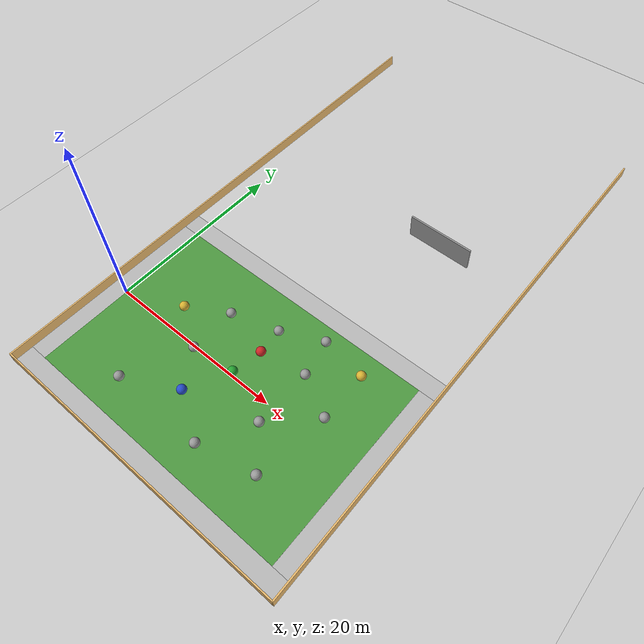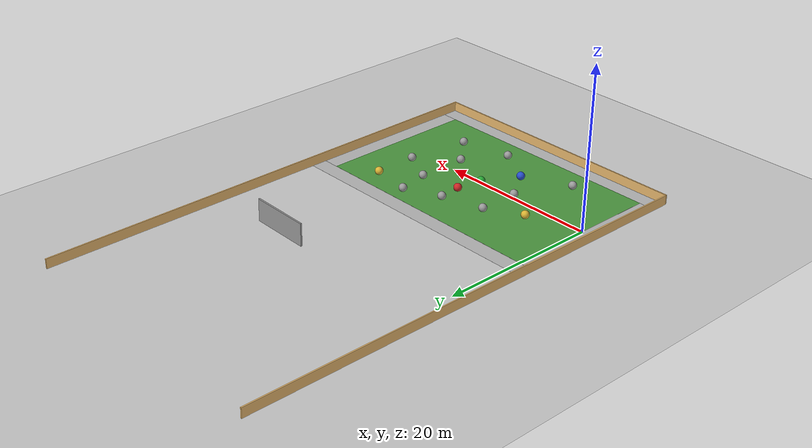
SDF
<sdf version="1.6">
 <world name="default">
  <model name="ground_plane">
   <static>1</static>
   <link name="link">
    <collision name="collision">
     <geometry><plane><normal>0 0 1</normal><size>100 100</size></plane></geometry>
     <surface>
      <contact><collide_bitmask>65535</collide_bitmask></contact>
      <friction><ode><mu>100</mu><mu2>50</mu2></ode></friction>
     </surface>
    </collision>
    <visual name="visual">
     <cast_shadows>0</cast_shadows>
     <geometry><plane><normal>0 0 1</normal><size>100 100</size></plane></geometry>
     <material>
      <script><uri>file://media/materials/scripts/gazebo.material</uri><name>Gazebo/Grey</name></script>
     </material>
    </visual>
   </link>
  </model>
  <model name="unit_sphere">
   <pose>15.9366 3.49899 0.51 0 -0 0</pose>
   <link name="link">
    <inertial>
     <mass>1</mass>
     <inertia><ixx>0.1</ixx><ixy>0</ixy><ixz>0</ixz><iyy>0.1</iyy><iyz>0</iyz><izz>0.1</izz></inertia>
    </inertial>
    <collision name="collision"><geometry><sphere><radius>0.5</radius></sphere></geometry></collision>
    <visual name="visual">
     <geometry><sphere><radius>0.5</radius></sphere></geometry>
     <material>
      <script><name>Gazebo/Red</name><uri>file://media/materials/scripts/gazebo.material</uri></script>
     </material>
    </visual>
   </link>
  </model>
  <model name="unit_sphere_0">
   <pose>15.3428 0.263916 0.51 0 -0 0</pose>
   <link name="link">
    <inertial>
     <mass>1</mass>
     <inertia><ixx>0.1</ixx><ixy>0</ixy><ixz>0</ixz><iyy>0.1</iyy><iyz>0</iyz><izz>0.1</izz></inertia>
    </inertial>
    <collision name="collision"><geometry><sphere><radius>0.5</radius></sphere></geometry></collision>
    <visual name="visual">
     <geometry><sphere><radius>0.5</radius></sphere></geometry>
     <material>
      <script><name>Gazebo/Green</name><uri>file://media/materials/scripts/gazebo.material</uri></script>
     </material>
    </visual>
   </link>
  </model>
  <model name="unit_sphere_1">
   <pose>13.0665 -4.08041 0.51 0 -0 0</pose>
   <link name="link">
    <inertial>
     <mass>1</mass>
     <inertia><ixx>0.1</ixx><ixy>0</ixy><ixz>0</ixz><iyy>0.1</iyy><iyz>0</iyz><izz>0.1</izz></inertia>
    </inertial>
    <collision name="collision"><geometry><sphere><radius>0.5</radius></sphere></geometry></collision>
    <visual name="visual">
     <geometry><sphere><radius>0.5</radius></sphere></geometry>
     <material>
      <script><name>Gazebo/Blue</name><uri>file://media/materials/scripts/gazebo.material</uri></script>
     </material>
    </visual>
   </link>
  </model>
  <model name="robocup_3d_field">
   <static>1</static>
   <link name="field">
    <pose>0 0 0.01 0 -0 0</pose>
    <collision name="collision">
     <geometry><plane><normal>0 0 1</normal><size>30 20</size></plane></geometry>
     <surface><friction><ode><mu>100</mu><mu2>50</mu2></ode></friction></surface>
    </collision>
    <visual name="base1">
     <pose>0 11 0.001 0 -0 0</pose>
     <cast_shadows>0</cast_shadows>
     <geometry><plane><normal>0 0 1</normal><size>34 2</size></plane></geometry>
     <material>
      <script>
       <uri>model://robocup_3Dsim_field/materials/scripts/</uri>
       <uri>model://robocup_3Dsim_field/materials/textures/</uri>
       <name>RoboCup/FieldBorder</name>
      </script>
     </material>
    </visual>
    <visual name="base2">
     <pose>0 -11 0.001 0 -0 0</pose>
     <cast_shadows>0</cast_shadows>
     <geometry><plane><normal>0 0 1</normal><size>34 2</size></plane></geometry>
     <material>
      <script>
       <uri>model://robocup_3Dsim_field/materials/scripts/</uri>
       <uri>model://robocup_3Dsim_field/materials/textures/</uri>
       <name>RoboCup/FieldBorder</name>
      </script>
     </material>
    </visual>
    <visual name="base3">
     <pose>16 0 0.001 0 -0 0</pose>
     <cast_shadows>0</cast_shadows>
     <geometry><plane><normal>0 0 1</normal><size>2 20</size></plane></geometry>
     <material>
      <script>
       <uri>model://robocup_3Dsim_field/materials/scripts/</uri>
       <uri>model://robocup_3Dsim_field/materials/textures/</uri>
       <name>RoboCup/FieldBorder</name>
      </script>
     </material>
    </visual>
    <visual name="base4">
     <pose>-16 0 0.001 0 -0 0</pose>
     <cast_shadows>0</cast_shadows>
     <geometry><plane><normal>0 0 1</normal><size>2 20</size></plane></geometry>
     <material>
      <script>
       <uri>model://robocup_3Dsim_field/materials/scripts/</uri>
       <uri>model://robocup_3Dsim_field/materials/textures/</uri>
       <name>RoboCup/FieldBorder</name>
      </script>
     </material>
    </visual>
    <visual name="carpet">
     <cast_shadows>0</cast_shadows>
     <geometry><plane><normal>0 0 1</normal><size>30 20</size></plane></geometry>
     <material>
      <script>
       <uri>model://robocup_3Dsim_field/materials/scripts/</uri>
       <uri>model://robocup_3Dsim_field/materials/textures/</uri>
       <name>RoboCup/Grass</name>
      </script>
     </material>
    </visual>
   </link>
   <pose>15.0498 -0.030213 0 0 -0 0</pose>
  </model>
  <model name="build5.16">
   <pose>15.058 18 0 0 -0 0</pose>
   <link name="Wall_0">
    <collision name="Wall_0_Collision">
     <geometry><box><size>60.15 0.15 1.2</size></box></geometry>
     <pose>0 0 0.6 0 -0 0</pose>
    </collision>
    <visual name="Wall_0_Visual">
     <pose>0 0 0.6 0 -0 0</pose>
     <geometry><box><size>60.15 0.15 1.2</size></box></geometry>
     <material>
      <script><uri>file://media/materials/scripts/gazebo.material</uri><name>Gazebo/Grey</name></script>
      <ambient>0.913725 0.72549 0.431373 1</ambient>
     </material>
     <meta><layer>0</layer></meta>
    </visual>
    <pose>-17.027 0 0 0 -0 1.5708</pose>
   </link>
   <link name="Wall_3">
    <collision name="Wall_3_Collision">
     <geometry><box><size>60.15 0.15 1.2</size></box></geometry>
     <pose>0 0 0.6 0 -0 0</pose>
    </collision>
    <visual name="Wall_3_Visual">
     <pose>0 0 0.6 0 -0 0</pose>
     <geometry><box><size>60.15 0.15 1.2</size></box></geometry>
     <material>
      <script><uri>file://media/materials/scripts/gazebo.material</uri><name>Gazebo/Grey</name></script>
      <ambient>0.913725 0.72549 0.431373 1</ambient>
     </material>
     <meta><layer>0</layer></meta>
    </visual>
    <pose>17.027 0 0 0 -0 1.5708</pose>
   </link>
   <link name="Wall_5">
    <collision name="Wall_5_Collision">
     <geometry><box><size>34.204 0.15 1.2</size></box></geometry>
     <pose>0 0 0.6 0 -0 0</pose>
    </collision>
    <visual name="Wall_5_Visual">
     <pose>0 0 0.6 0 -0 0</pose>
     <geometry><box><size>34.204 0.15 1.2</size></box></geometry>
     <material>
      <script><uri>file://media/materials/scripts/gazebo.material</uri><name>Gazebo/Grey</name></script>
      <ambient>0.913725 0.72549 0.431373 1</ambient>
     </material>
     <meta><layer>0</layer></meta>
    </visual>
    <pose>-0 -30 0 0 -0 0</pose>
   </link>
   <static>1</static>
  </model>
  <model name="grey_wall_clone_clone_clone_clone_clone">
   <static>1</static>
   <link name="link">
    <pose>0 0 1.4 0 -0 0</pose>
    <collision name="collision"><geometry><box><size>7.5 0.2 2.8</size></box></geometry></collision>
    <visual name="visual">
     <cast_shadows>0</cast_shadows>
     <geometry><box><size>7.5 0.2 2.8</size></box></geometry>
     <material>
      <script>
       <uri>model://grey_wall/materials/scripts</uri>
       <uri>model://grey_wall/materials/textures</uri>
       <name>vrc/grey_wall</name>
      </script>
     </material>
    </visual>
   </link>
   <pose>21.7858 24.9928 0 0 0 -0.012529</pose>
  </model>
  <model name="unit_sphere_2">
   <pose>15.6785 6.30659 0.51 0 -0 0</pose>
   <link name="link">
    <inertial>
     <mass>1</mass>
     <inertia><ixx>0.1</ixx><ixy>0</ixy><ixz>0</ixz><iyy>0.1</iyy><iyz>0</iyz><izz>0.1</izz></inertia>
    </inertial>
    <collision name="collision"><geometry><sphere><radius>0.5</radius></sphere></geometry></collision>
    <visual name="visual">
     <geometry><sphere><radius>0.5</radius></sphere></geometry>
     <material>
      <script><name>Gazebo/Grey</name><uri>file://media/materials/scripts/gazebo.material</uri></script>
     </material>
    </visual>
   </link>
  </model>
  <model name="unit_sphere_3">
   <pose>10.5525 4.83244 0.51 0 -0 0</pose>
   <link name="link">
    <inertial>
     <mass>1</mass>
     <inertia><ixx>0.1</ixx><ixy>0</ixy><ixz>0</ixz><iyy>0.1</iyy><iyz>0</iyz><izz>0.1</izz></inertia>
    </inertial>
    <collision name="collision"><geometry><sphere><radius>0.5</radius></sphere></geometry></collision>
    <visual name="visual">
     <geometry><sphere><radius>0.5</radius></sphere></geometry>
     <material>
      <script><name>Gazebo/Grey</name><uri>file://media/materials/scripts/gazebo.material</uri></script>
     </material>
    </visual>
   </link>
  </model>
  <model name="unit_sphere_4">
   <pose>10.5496 -0.240488 0.51 0 -0 0</pose>
   <link name="link">
    <inertial>
     <mass>1</mass>
     <inertia><ixx>0.1</ixx><ixy>0</ixy><ixz>0</ixz><iyy>0.1</iyy><iyz>0</iyz><izz>0.1</izz></inertia>
    </inertial>
    <collision name="collision"><geometry><sphere><radius>0.5</radius></sphere></geometry></collision>
    <visual name="visual">
     <geometry><sphere><radius>0.5</radius></sphere></geometry>
     <material>
      <script><name>Gazebo/Grey</name><uri>file://media/materials/scripts/gazebo.material</uri></script>
     </material>
    </visual>
   </link>
  </model>
  <model name="unit_sphere_5">
   <pose>7.44365 -6.84811 0.51 0 -0 0</pose>
   <link name="link">
    <inertial>
     <mass>1</mass>
     <inertia><ixx>0.1</ixx><ixy>0</ixy><ixz>0</ixz><iyy>0.1</iyy><iyz>0</iyz><izz>0.1</izz></inertia>
    </inertial>
    <collision name="collision"><geometry><sphere><radius>0.5</radius></sphere></geometry></collision>
    <visual name="visual">
     <geometry><sphere><radius>0.5</radius></sphere></geometry>
     <material>
      <script><name>Gazebo/Grey</name><uri>file://media/materials/scripts/gazebo.material</uri></script>
     </material>
    </visual>
   </link>
  </model>
  <model name="unit_sphere_6">
   <pose>17.8366 -6.9009 0.51 0 -0 0</pose>
   <link name="link">
    <inertial>
     <mass>1</mass>
     <inertia><ixx>0.1</ixx><ixy>0</ixy><ixz>0</ixz><iyy>0.1</iyy><iyz>0</iyz><izz>0.1</izz></inertia>
    </inertial>
    <collision name="collision"><geometry><sphere><radius>0.5</radius></sphere></geometry></collision>
    <visual name="visual">
     <geometry><sphere><radius>0.5</radius></sphere></geometry>
     <material>
      <script><name>Gazebo/Grey</name><uri>file://media/materials/scripts/gazebo.material</uri></script>
     </material>
    </visual>
   </link>
  </model>
  <model name="unit_sphere_7">
   <pose>20.8413 -1.87241 0.51 0 -0 0</pose>
   <link name="link">
    <inertial>
     <mass>1</mass>
     <inertia><ixx>0.1</ixx><ixy>0</ixy><ixz>0</ixz><iyy>0.1</iyy><iyz>0</iyz><izz>0.1</izz></inertia>
    </inertial>
    <collision name="collision"><geometry><sphere><radius>0.5</radius></sphere></geometry></collision>
    <visual name="visual">
     <geometry><sphere><radius>0.5</radius></sphere></geometry>
     <material>
      <script><name>Gazebo/Grey</name><uri>file://media/materials/scripts/gazebo.material</uri></script>
     </material>
    </visual>
   </link>
  </model>
  <model name="unit_sphere_8">
   <pose>20.8869 4.34198 0.51 0 -0 0</pose>
   <link name="link">
    <inertial>
     <mass>1</mass>
     <inertia><ixx>0.1</ixx><ixy>0</ixy><ixz>0</ixz><iyy>0.1</iyy><iyz>0</iyz><izz>0.1</izz></inertia>
    </inertial>
    <collision name="collision"><geometry><sphere><radius>0.5</radius></sphere></geometry></collision>
    <visual name="visual">
     <geometry><sphere><radius>0.5</radius></sphere></geometry>
     <material>
      <script><name>Gazebo/Grey</name><uri>file://media/materials/scripts/gazebo.material</uri></script>
     </material>
    </visual>
   </link>
  </model>
  <model name="unit_sphere_9">
   <pose>20.0864 8.29197 0.51 0 -0 0</pose>
   <link name="link">
    <inertial>
     <mass>1</mass>
     <inertia><ixx>0.1</ixx><ixy>0</ixy><ixz>0</ixz><iyy>0.1</iyy><iyz>0</iyz><izz>0.1</izz></inertia>
    </inertial>
    <collision name="collision"><geometry><sphere><radius>0.5</radius></sphere></geometry></collision>
    <visual name="visual">
     <geometry><sphere><radius>0.5</radius></sphere></geometry>
     <material>
      <script><name>Gazebo/Grey</name><uri>file://media/materials/scripts/gazebo.material</uri></script>
     </material>
    </visual>
   </link>
  </model>
  <model name="unit_sphere_10">
   <pose>24.0625 -5.56414 0.51 0 -0 0</pose>
   <link name="link">
    <inertial>
     <mass>1</mass>
     <inertia><ixx>0.1</ixx><ixy>0</ixy><ixz>0</ixz><iyy>0.1</iyy><iyz>0</iyz><izz>0.1</izz></inertia>
    </inertial>
    <collision name="collision"><geometry><sphere><radius>0.5</radius></sphere></geometry></collision>
    <visual name="visual">
     <geometry><sphere><radius>0.5</radius></sphere></geometry>
     <material>
      <script><name>Gazebo/Grey</name><uri>file://media/materials/scripts/gazebo.material</uri></script>
     </material>
    </visual>
   </link>
  </model>
  <model name="unit_sphere_11">
   <pose>25.1333 2.14844 0.51 0 -0 0</pose>
   <link name="link">
    <inertial>
     <mass>1</mass>
     <inertia><ixx>0.1</ixx><ixy>0</ixy><ixz>0</ixz><iyy>0.1</iyy><iyz>0</iyz><izz>0.1</izz></inertia>
    </inertial>
    <collision name="collision"><geometry><sphere><radius>0.5</radius></sphere></geometry></collision>
    <visual name="visual">
     <geometry><sphere><radius>0.5</radius></sphere></geometry>
     <material>
      <script><name>Gazebo/Grey</name><uri>file://media/materials/scripts/gazebo.material</uri></script>
     </material>
    </visual>
   </link>
  </model>
  <model name="unit_sphere_12">
   <pose>25.0767 7.5396 0.51 0 -0 0</pose>
   <link name="link">
    <inertial>
     <mass>1</mass>
     <inertia><ixx>0.1</ixx><ixy>0</ixy><ixz>0</ixz><iyy>0.1</iyy><iyz>0</iyz><izz>0.1</izz></inertia>
    </inertial>
    <collision name="collision"><geometry><sphere><radius>0.5</radius></sphere></geometry></collision>
    <visual name="visual">
     <geometry><sphere><radius>0.5</radius></sphere></geometry>
     <material>
      <script><name>Gazebo/Gold</name><uri>file://media/materials/scripts/gazebo.material</uri></script>
     </material>
    </visual>
   </link>
  </model>
  <model name="unit_sphere_13">
   <pose>6.29641 2.44294 0.51 0 -0 0</pose>
   <link name="link">
    <inertial>
     <mass>1</mass>
     <inertia><ixx>0.1</ixx><ixy>0</ixy><ixz>0</ixz><iyy>0.1</iyy><iyz>0</iyz><izz>0.1</izz></inertia>
    </inertial>
    <collision name="collision"><geometry><sphere><radius>0.5</radius></sphere></geometry></collision>
    <visual name="visual">
     <geometry><sphere><radius>0.5</radius></sphere></geometry>
     <material>
      <script><name>Gazebo/Gold</name><uri>file://media/materials/scripts/gazebo.material</uri></script>
     </material>
    </visual>
   </link>
  </model>
 </world>
</sdf>
